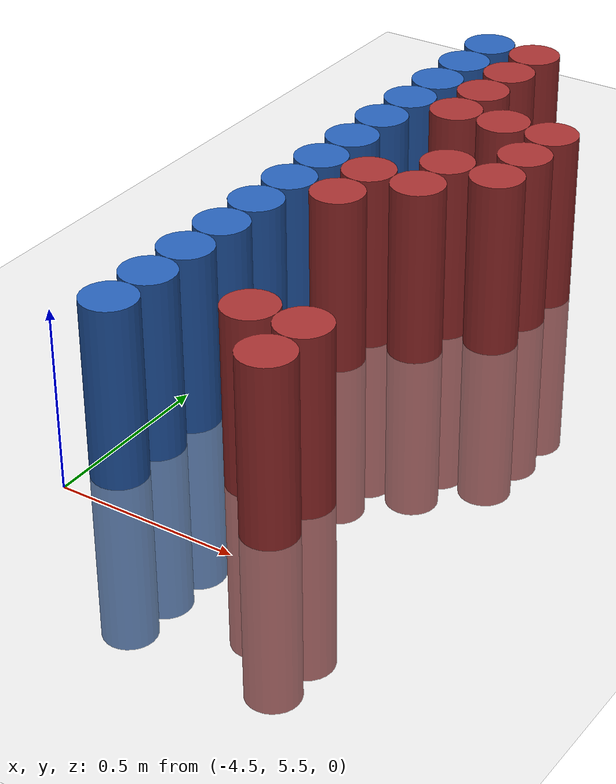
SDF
<sdf version="1.6">
 <world name="default">
  <model name="ground_plane">
   <static>1</static>
   <link name="link">
    <collision name="collision">
     <geometry><plane><normal>0 0 1</normal><size>100 100</size></plane></geometry>
     <surface><friction><ode><mu>100</mu><mu2>50</mu2></ode></friction></surface>
    </collision>
    <visual name="visual">
     <cast_shadows>0</cast_shadows>
     <geometry><plane><normal>0 0 1</normal><size>100 100</size></plane></geometry>
     <material>
      <script><uri>file://media/materials/scripts/gazebo.material</uri><name>Gazebo/Grey</name></script>
     </material>
    </visual>
   </link>
  </model>
  <model name="unit_cylinder_99">
   <static>1</static>
   <pose>-4.425000 5.625000 0.000000 0.000000 0.000000 0.000000</pose>
   <link name="link">
    <inertial>
     <mass>1</mass>
     <inertia><ixx>0.145833</ixx><ixy>0</ixy><ixz>0</ixz><iyy>0.145833</iyy><iyz>0</iyz><izz>0.125</izz></inertia>
    </inertial>
    <collision name="collision">
     <geometry><cylinder><radius>0.075000</radius><length>1</length></cylinder></geometry>
    </collision>
    <visual name="visual">
     <geometry><cylinder><radius>0.075000</radius><length>1</length></cylinder></geometry>
     <material>
      <ambient>0.152000 0.379000 0.720000 1</ambient>
      <diffuse>0.152000 0.379000 0.720000 1</diffuse>
     </material>
     <material>
      <script><name>Gazebo/Grey</name><uri>file://media/materials/scripts/gazebo.material</uri></script>
     </material>
    </visual>
   </link>
  </model>
  <model name="unit_cylinder_100">
   <static>1</static>
   <pose>-4.425000 5.775000 0.000000 0.000000 0.000000 0.000000</pose>
   <link name="link">
    <inertial>
     <mass>1</mass>
     <inertia><ixx>0.145833</ixx><ixy>0</ixy><ixz>0</ixz><iyy>0.145833</iyy><iyz>0</iyz><izz>0.125</izz></inertia>
    </inertial>
    <collision name="collision">
     <geometry><cylinder><radius>0.075000</radius><length>1</length></cylinder></geometry>
    </collision>
    <visual name="visual">
     <geometry><cylinder><radius>0.075000</radius><length>1</length></cylinder></geometry>
     <material>
      <ambient>0.152000 0.379000 0.720000 1</ambient>
      <diffuse>0.152000 0.379000 0.720000 1</diffuse>
     </material>
     <material>
      <script><name>Gazebo/Grey</name><uri>file://media/materials/scripts/gazebo.material</uri></script>
     </material>
    </visual>
   </link>
  </model>
  <model name="unit_cylinder_101">
   <static>1</static>
   <pose>-4.425000 5.925000 0.000000 0.000000 0.000000 0.000000</pose>
   <link name="link">
    <inertial>
     <mass>1</mass>
     <inertia><ixx>0.145833</ixx><ixy>0</ixy><ixz>0</ixz><iyy>0.145833</iyy><iyz>0</iyz><izz>0.125</izz></inertia>
    </inertial>
    <collision name="collision">
     <geometry><cylinder><radius>0.075000</radius><length>1</length></cylinder></geometry>
    </collision>
    <visual name="visual">
     <geometry><cylinder><radius>0.075000</radius><length>1</length></cylinder></geometry>
     <material>
      <ambient>0.152000 0.379000 0.720000 1</ambient>
      <diffuse>0.152000 0.379000 0.720000 1</diffuse>
     </material>
     <material>
      <script><name>Gazebo/Grey</name><uri>file://media/materials/scripts/gazebo.material</uri></script>
     </material>
    </visual>
   </link>
  </model>
  <model name="unit_cylinder_102">
   <static>1</static>
   <pose>-4.425000 6.075000 0.000000 0.000000 0.000000 0.000000</pose>
   <link name="link">
    <inertial>
     <mass>1</mass>
     <inertia><ixx>0.145833</ixx><ixy>0</ixy><ixz>0</ixz><iyy>0.145833</iyy><iyz>0</iyz><izz>0.125</izz></inertia>
    </inertial>
    <collision name="collision">
     <geometry><cylinder><radius>0.075000</radius><length>1</length></cylinder></geometry>
    </collision>
    <visual name="visual">
     <geometry><cylinder><radius>0.075000</radius><length>1</length></cylinder></geometry>
     <material>
      <ambient>0.152000 0.379000 0.720000 1</ambient>
      <diffuse>0.152000 0.379000 0.720000 1</diffuse>
     </material>
     <material>
      <script><name>Gazebo/Grey</name><uri>file://media/materials/scripts/gazebo.material</uri></script>
     </material>
    </visual>
   </link>
  </model>
  <model name="unit_cylinder_103">
   <static>1</static>
   <pose>-4.425000 6.225000 0.000000 0.000000 0.000000 0.000000</pose>
   <link name="link">
    <inertial>
     <mass>1</mass>
     <inertia><ixx>0.145833</ixx><ixy>0</ixy><ixz>0</ixz><iyy>0.145833</iyy><iyz>0</iyz><izz>0.125</izz></inertia>
    </inertial>
    <collision name="collision">
     <geometry><cylinder><radius>0.075000</radius><length>1</length></cylinder></geometry>
    </collision>
    <visual name="visual">
     <geometry><cylinder><radius>0.075000</radius><length>1</length></cylinder></geometry>
     <material>
      <ambient>0.152000 0.379000 0.720000 1</ambient>
      <diffuse>0.152000 0.379000 0.720000 1</diffuse>
     </material>
     <material>
      <script><name>Gazebo/Grey</name><uri>file://media/materials/scripts/gazebo.material</uri></script>
     </material>
    </visual>
   </link>
  </model>
  <model name="unit_cylinder_104">
   <static>1</static>
   <pose>-4.425000 6.375000 0.000000 0.000000 0.000000 0.000000</pose>
   <link name="link">
    <inertial>
     <mass>1</mass>
     <inertia><ixx>0.145833</ixx><ixy>0</ixy><ixz>0</ixz><iyy>0.145833</iyy><iyz>0</iyz><izz>0.125</izz></inertia>
    </inertial>
    <collision name="collision">
     <geometry><cylinder><radius>0.075000</radius><length>1</length></cylinder></geometry>
    </collision>
    <visual name="visual">
     <geometry><cylinder><radius>0.075000</radius><length>1</length></cylinder></geometry>
     <material>
      <ambient>0.152000 0.379000 0.720000 1</ambient>
      <diffuse>0.152000 0.379000 0.720000 1</diffuse>
     </material>
     <material>
      <script><name>Gazebo/Grey</name><uri>file://media/materials/scripts/gazebo.material</uri></script>
     </material>
    </visual>
   </link>
  </model>
  <model name="unit_cylinder_105">
   <static>1</static>
   <pose>-4.425000 6.525000 0.000000 0.000000 0.000000 0.000000</pose>
   <link name="link">
    <inertial>
     <mass>1</mass>
     <inertia><ixx>0.145833</ixx><ixy>0</ixy><ixz>0</ixz><iyy>0.145833</iyy><iyz>0</iyz><izz>0.125</izz></inertia>
    </inertial>
    <collision name="collision">
     <geometry><cylinder><radius>0.075000</radius><length>1</length></cylinder></geometry>
    </collision>
    <visual name="visual">
     <geometry><cylinder><radius>0.075000</radius><length>1</length></cylinder></geometry>
     <material>
      <ambient>0.152000 0.379000 0.720000 1</ambient>
      <diffuse>0.152000 0.379000 0.720000 1</diffuse>
     </material>
     <material>
      <script><name>Gazebo/Grey</name><uri>file://media/materials/scripts/gazebo.material</uri></script>
     </material>
    </visual>
   </link>
  </model>
  <model name="unit_cylinder_106">
   <static>1</static>
   <pose>-4.425000 6.675000 0.000000 0.000000 0.000000 0.000000</pose>
   <link name="link">
    <inertial>
     <mass>1</mass>
     <inertia><ixx>0.145833</ixx><ixy>0</ixy><ixz>0</ixz><iyy>0.145833</iyy><iyz>0</iyz><izz>0.125</izz></inertia>
    </inertial>
    <collision name="collision">
     <geometry><cylinder><radius>0.075000</radius><length>1</length></cylinder></geometry>
    </collision>
    <visual name="visual">
     <geometry><cylinder><radius>0.075000</radius><length>1</length></cylinder></geometry>
     <material>
      <ambient>0.152000 0.379000 0.720000 1</ambient>
      <diffuse>0.152000 0.379000 0.720000 1</diffuse>
     </material>
     <material>
      <script><name>Gazebo/Grey</name><uri>file://media/materials/scripts/gazebo.material</uri></script>
     </material>
    </visual>
   </link>
  </model>
  <model name="unit_cylinder_107">
   <static>1</static>
   <pose>-4.425000 6.825000 0.000000 0.000000 0.000000 0.000000</pose>
   <link name="link">
    <inertial>
     <mass>1</mass>
     <inertia><ixx>0.145833</ixx><ixy>0</ixy><ixz>0</ixz><iyy>0.145833</iyy><iyz>0</iyz><izz>0.125</izz></inertia>
    </inertial>
    <collision name="collision">
     <geometry><cylinder><radius>0.075000</radius><length>1</length></cylinder></geometry>
    </collision>
    <visual name="visual">
     <geometry><cylinder><radius>0.075000</radius><length>1</length></cylinder></geometry>
     <material>
      <ambient>0.152000 0.379000 0.720000 1</ambient>
      <diffuse>0.152000 0.379000 0.720000 1</diffuse>
     </material>
     <material>
      <script><name>Gazebo/Grey</name><uri>file://media/materials/scripts/gazebo.material</uri></script>
     </material>
    </visual>
   </link>
  </model>
  <model name="unit_cylinder_108">
   <static>1</static>
   <pose>-4.425000 6.975000 0.000000 0.000000 0.000000 0.000000</pose>
   <link name="link">
    <inertial>
     <mass>1</mass>
     <inertia><ixx>0.145833</ixx><ixy>0</ixy><ixz>0</ixz><iyy>0.145833</iyy><iyz>0</iyz><izz>0.125</izz></inertia>
    </inertial>
    <collision name="collision">
     <geometry><cylinder><radius>0.075000</radius><length>1</length></cylinder></geometry>
    </collision>
    <visual name="visual">
     <geometry><cylinder><radius>0.075000</radius><length>1</length></cylinder></geometry>
     <material>
      <ambient>0.152000 0.379000 0.720000 1</ambient>
      <diffuse>0.152000 0.379000 0.720000 1</diffuse>
     </material>
     <material>
      <script><name>Gazebo/Grey</name><uri>file://media/materials/scripts/gazebo.material</uri></script>
     </material>
    </visual>
   </link>
  </model>
  <model name="unit_cylinder_109">
   <static>1</static>
   <pose>-4.425000 7.125000 0.000000 0.000000 0.000000 0.000000</pose>
   <link name="link">
    <inertial>
     <mass>1</mass>
     <inertia><ixx>0.145833</ixx><ixy>0</ixy><ixz>0</ixz><iyy>0.145833</iyy><iyz>0</iyz><izz>0.125</izz></inertia>
    </inertial>
    <collision name="collision">
     <geometry><cylinder><radius>0.075000</radius><length>1</length></cylinder></geometry>
    </collision>
    <visual name="visual">
     <geometry><cylinder><radius>0.075000</radius><length>1</length></cylinder></geometry>
     <material>
      <ambient>0.152000 0.379000 0.720000 1</ambient>
      <diffuse>0.152000 0.379000 0.720000 1</diffuse>
     </material>
     <material>
      <script><name>Gazebo/Grey</name><uri>file://media/materials/scripts/gazebo.material</uri></script>
     </material>
    </visual>
   </link>
  </model>
  <model name="unit_cylinder_110">
   <static>1</static>
   <pose>-4.425000 7.275000 0.000000 0.000000 0.000000 0.000000</pose>
   <link name="link">
    <inertial>
     <mass>1</mass>
     <inertia><ixx>0.145833</ixx><ixy>0</ixy><ixz>0</ixz><iyy>0.145833</iyy><iyz>0</iyz><izz>0.125</izz></inertia>
    </inertial>
    <collision name="collision">
     <geometry><cylinder><radius>0.075000</radius><length>1</length></cylinder></geometry>
    </collision>
    <visual name="visual">
     <geometry><cylinder><radius>0.075000</radius><length>1</length></cylinder></geometry>
     <material>
      <ambient>0.152000 0.379000 0.720000 1</ambient>
      <diffuse>0.152000 0.379000 0.720000 1</diffuse>
     </material>
     <material>
      <script><name>Gazebo/Grey</name><uri>file://media/materials/scripts/gazebo.material</uri></script>
     </material>
    </visual>
   </link>
  </model>
  <model name="unit_cylinder_111">
   <static>1</static>
   <pose>-4.425000 7.425000 0.000000 0.000000 0.000000 0.000000</pose>
   <link name="link">
    <inertial>
     <mass>1</mass>
     <inertia><ixx>0.145833</ixx><ixy>0</ixy><ixz>0</ixz><iyy>0.145833</iyy><iyz>0</iyz><izz>0.125</izz></inertia>
    </inertial>
    <collision name="collision">
     <geometry><cylinder><radius>0.075000</radius><length>1</length></cylinder></geometry>
    </collision>
    <visual name="visual">
     <geometry><cylinder><radius>0.075000</radius><length>1</length></cylinder></geometry>
     <material>
      <ambient>0.152000 0.379000 0.720000 1</ambient>
      <diffuse>0.152000 0.379000 0.720000 1</diffuse>
     </material>
     <material>
      <script><name>Gazebo/Grey</name><uri>file://media/materials/scripts/gazebo.material</uri></script>
     </material>
    </visual>
   </link>
  </model>
  <model name="unit_cylinder_129">
   <static>1</static>
   <pose>-4.275000 6.375000 0.000000 0.000000 0.000000 0.000000</pose>
   <link name="link">
    <inertial>
     <mass>1</mass>
     <inertia><ixx>0.145833</ixx><ixy>0</ixy><ixz>0</ixz><iyy>0.145833</iyy><iyz>0</iyz><izz>0.125</izz></inertia>
    </inertial>
    <collision name="collision">
     <geometry><cylinder><radius>0.075000</radius><length>1</length></cylinder></geometry>
    </collision>
    <visual name="visual">
     <geometry><cylinder><radius>0.075000</radius><length>1</length></cylinder></geometry>
     <material>
      <ambient>0.648000 0.192000 0.192000 1</ambient>
      <diffuse>0.648000 0.192000 0.192000 1</diffuse>
     </material>
     <material>
      <script><name>Gazebo/Grey</name><uri>file://media/materials/scripts/gazebo.material</uri></script>
     </material>
    </visual>
   </link>
  </model>
  <model name="unit_cylinder_130">
   <static>1</static>
   <pose>-4.275000 6.525000 0.000000 0.000000 0.000000 0.000000</pose>
   <link name="link">
    <inertial>
     <mass>1</mass>
     <inertia><ixx>0.145833</ixx><ixy>0</ixy><ixz>0</ixz><iyy>0.145833</iyy><iyz>0</iyz><izz>0.125</izz></inertia>
    </inertial>
    <collision name="collision">
     <geometry><cylinder><radius>0.075000</radius><length>1</length></cylinder></geometry>
    </collision>
    <visual name="visual">
     <geometry><cylinder><radius>0.075000</radius><length>1</length></cylinder></geometry>
     <material>
      <ambient>0.648000 0.192000 0.192000 1</ambient>
      <diffuse>0.648000 0.192000 0.192000 1</diffuse>
     </material>
     <material>
      <script><name>Gazebo/Grey</name><uri>file://media/materials/scripts/gazebo.material</uri></script>
     </material>
    </visual>
   </link>
  </model>
  <model name="unit_cylinder_131">
   <static>1</static>
   <pose>-4.275000 6.975000 0.000000 0.000000 0.000000 0.000000</pose>
   <link name="link">
    <inertial>
     <mass>1</mass>
     <inertia><ixx>0.145833</ixx><ixy>0</ixy><ixz>0</ixz><iyy>0.145833</iyy><iyz>0</iyz><izz>0.125</izz></inertia>
    </inertial>
    <collision name="collision">
     <geometry><cylinder><radius>0.075000</radius><length>1</length></cylinder></geometry>
    </collision>
    <visual name="visual">
     <geometry><cylinder><radius>0.075000</radius><length>1</length></cylinder></geometry>
     <material>
      <ambient>0.648000 0.192000 0.192000 1</ambient>
      <diffuse>0.648000 0.192000 0.192000 1</diffuse>
     </material>
     <material>
      <script><name>Gazebo/Grey</name><uri>file://media/materials/scripts/gazebo.material</uri></script>
     </material>
    </visual>
   </link>
  </model>
  <model name="unit_cylinder_132">
   <static>1</static>
   <pose>-4.275000 7.125000 0.000000 0.000000 0.000000 0.000000</pose>
   <link name="link">
    <inertial>
     <mass>1</mass>
     <inertia><ixx>0.145833</ixx><ixy>0</ixy><ixz>0</ixz><iyy>0.145833</iyy><iyz>0</iyz><izz>0.125</izz></inertia>
    </inertial>
    <collision name="collision">
     <geometry><cylinder><radius>0.075000</radius><length>1</length></cylinder></geometry>
    </collision>
    <visual name="visual">
     <geometry><cylinder><radius>0.075000</radius><length>1</length></cylinder></geometry>
     <material>
      <ambient>0.648000 0.192000 0.192000 1</ambient>
      <diffuse>0.648000 0.192000 0.192000 1</diffuse>
     </material>
     <material>
      <script><name>Gazebo/Grey</name><uri>file://media/materials/scripts/gazebo.material</uri></script>
     </material>
    </visual>
   </link>
  </model>
  <model name="unit_cylinder_133">
   <static>1</static>
   <pose>-4.275000 7.275000 0.000000 0.000000 0.000000 0.000000</pose>
   <link name="link">
    <inertial>
     <mass>1</mass>
     <inertia><ixx>0.145833</ixx><ixy>0</ixy><ixz>0</ixz><iyy>0.145833</iyy><iyz>0</iyz><izz>0.125</izz></inertia>
    </inertial>
    <collision name="collision">
     <geometry><cylinder><radius>0.075000</radius><length>1</length></cylinder></geometry>
    </collision>
    <visual name="visual">
     <geometry><cylinder><radius>0.075000</radius><length>1</length></cylinder></geometry>
     <material>
      <ambient>0.648000 0.192000 0.192000 1</ambient>
      <diffuse>0.648000 0.192000 0.192000 1</diffuse>
     </material>
     <material>
      <script><name>Gazebo/Grey</name><uri>file://media/materials/scripts/gazebo.material</uri></script>
     </material>
    </visual>
   </link>
  </model>
  <model name="unit_cylinder_134">
   <static>1</static>
   <pose>-4.275000 7.425000 0.000000 0.000000 0.000000 0.000000</pose>
   <link name="link">
    <inertial>
     <mass>1</mass>
     <inertia><ixx>0.145833</ixx><ixy>0</ixy><ixz>0</ixz><iyy>0.145833</iyy><iyz>0</iyz><izz>0.125</izz></inertia>
    </inertial>
    <collision name="collision">
     <geometry><cylinder><radius>0.075000</radius><length>1</length></cylinder></geometry>
    </collision>
    <visual name="visual">
     <geometry><cylinder><radius>0.075000</radius><length>1</length></cylinder></geometry>
     <material>
      <ambient>0.648000 0.192000 0.192000 1</ambient>
      <diffuse>0.648000 0.192000 0.192000 1</diffuse>
     </material>
     <material>
      <script><name>Gazebo/Grey</name><uri>file://media/materials/scripts/gazebo.material</uri></script>
     </material>
    </visual>
   </link>
  </model>
  <model name="unit_cylinder_147">
   <static>1</static>
   <pose>-4.125000 5.775000 0.000000 0.000000 0.000000 0.000000</pose>
   <link name="link">
    <inertial>
     <mass>1</mass>
     <inertia><ixx>0.145833</ixx><ixy>0</ixy><ixz>0</ixz><iyy>0.145833</iyy><iyz>0</iyz><izz>0.125</izz></inertia>
    </inertial>
    <collision name="collision">
     <geometry><cylinder><radius>0.075000</radius><length>1</length></cylinder></geometry>
    </collision>
    <visual name="visual">
     <geometry><cylinder><radius>0.075000</radius><length>1</length></cylinder></geometry>
     <material>
      <ambient>0.648000 0.192000 0.192000 1</ambient>
      <diffuse>0.648000 0.192000 0.192000 1</diffuse>
     </material>
     <material>
      <script><name>Gazebo/Grey</name><uri>file://media/materials/scripts/gazebo.material</uri></script>
     </material>
    </visual>
   </link>
  </model>
  <model name="unit_cylinder_148">
   <static>1</static>
   <pose>-4.125000 6.525000 0.000000 0.000000 0.000000 0.000000</pose>
   <link name="link">
    <inertial>
     <mass>1</mass>
     <inertia><ixx>0.145833</ixx><ixy>0</ixy><ixz>0</ixz><iyy>0.145833</iyy><iyz>0</iyz><izz>0.125</izz></inertia>
    </inertial>
    <collision name="collision">
     <geometry><cylinder><radius>0.075000</radius><length>1</length></cylinder></geometry>
    </collision>
    <visual name="visual">
     <geometry><cylinder><radius>0.075000</radius><length>1</length></cylinder></geometry>
     <material>
      <ambient>0.648000 0.192000 0.192000 1</ambient>
      <diffuse>0.648000 0.192000 0.192000 1</diffuse>
     </material>
     <material>
      <script><name>Gazebo/Grey</name><uri>file://media/materials/scripts/gazebo.material</uri></script>
     </material>
    </visual>
   </link>
  </model>
  <model name="unit_cylinder_149">
   <static>1</static>
   <pose>-4.125000 6.675000 0.000000 0.000000 0.000000 0.000000</pose>
   <link name="link">
    <inertial>
     <mass>1</mass>
     <inertia><ixx>0.145833</ixx><ixy>0</ixy><ixz>0</ixz><iyy>0.145833</iyy><iyz>0</iyz><izz>0.125</izz></inertia>
    </inertial>
    <collision name="collision">
     <geometry><cylinder><radius>0.075000</radius><length>1</length></cylinder></geometry>
    </collision>
    <visual name="visual">
     <geometry><cylinder><radius>0.075000</radius><length>1</length></cylinder></geometry>
     <material>
      <ambient>0.648000 0.192000 0.192000 1</ambient>
      <diffuse>0.648000 0.192000 0.192000 1</diffuse>
     </material>
     <material>
      <script><name>Gazebo/Grey</name><uri>file://media/materials/scripts/gazebo.material</uri></script>
     </material>
    </visual>
   </link>
  </model>
  <model name="unit_cylinder_150">
   <static>1</static>
   <pose>-4.125000 6.975000 0.000000 0.000000 0.000000 0.000000</pose>
   <link name="link">
    <inertial>
     <mass>1</mass>
     <inertia><ixx>0.145833</ixx><ixy>0</ixy><ixz>0</ixz><iyy>0.145833</iyy><iyz>0</iyz><izz>0.125</izz></inertia>
    </inertial>
    <collision name="collision">
     <geometry><cylinder><radius>0.075000</radius><length>1</length></cylinder></geometry>
    </collision>
    <visual name="visual">
     <geometry><cylinder><radius>0.075000</radius><length>1</length></cylinder></geometry>
     <material>
      <ambient>0.648000 0.192000 0.192000 1</ambient>
      <diffuse>0.648000 0.192000 0.192000 1</diffuse>
     </material>
     <material>
      <script><name>Gazebo/Grey</name><uri>file://media/materials/scripts/gazebo.material</uri></script>
     </material>
    </visual>
   </link>
  </model>
  <model name="unit_cylinder_155">
   <static>1</static>
   <pose>-3.975000 5.625000 0.000000 0.000000 0.000000 0.000000</pose>
   <link name="link">
    <inertial>
     <mass>1</mass>
     <inertia><ixx>0.145833</ixx><ixy>0</ixy><ixz>0</ixz><iyy>0.145833</iyy><iyz>0</iyz><izz>0.125</izz></inertia>
    </inertial>
    <collision name="collision">
     <geometry><cylinder><radius>0.075000</radius><length>1</length></cylinder></geometry>
    </collision>
    <visual name="visual">
     <geometry><cylinder><radius>0.075000</radius><length>1</length></cylinder></geometry>
     <material>
      <ambient>0.648000 0.192000 0.192000 1</ambient>
      <diffuse>0.648000 0.192000 0.192000 1</diffuse>
     </material>
     <material>
      <script><name>Gazebo/Grey</name><uri>file://media/materials/scripts/gazebo.material</uri></script>
     </material>
    </visual>
   </link>
  </model>
  <model name="unit_cylinder_156">
   <static>1</static>
   <pose>-3.975000 5.775000 0.000000 0.000000 0.000000 0.000000</pose>
   <link name="link">
    <inertial>
     <mass>1</mass>
     <inertia><ixx>0.145833</ixx><ixy>0</ixy><ixz>0</ixz><iyy>0.145833</iyy><iyz>0</iyz><izz>0.125</izz></inertia>
    </inertial>
    <collision name="collision">
     <geometry><cylinder><radius>0.075000</radius><length>1</length></cylinder></geometry>
    </collision>
    <visual name="visual">
     <geometry><cylinder><radius>0.075000</radius><length>1</length></cylinder></geometry>
     <material>
      <ambient>0.648000 0.192000 0.192000 1</ambient>
      <diffuse>0.648000 0.192000 0.192000 1</diffuse>
     </material>
     <material>
      <script><name>Gazebo/Grey</name><uri>file://media/materials/scripts/gazebo.material</uri></script>
     </material>
    </visual>
   </link>
  </model>
  <model name="unit_cylinder_157">
   <static>1</static>
   <pose>-3.975000 6.675000 0.000000 0.000000 0.000000 0.000000</pose>
   <link name="link">
    <inertial>
     <mass>1</mass>
     <inertia><ixx>0.145833</ixx><ixy>0</ixy><ixz>0</ixz><iyy>0.145833</iyy><iyz>0</iyz><izz>0.125</izz></inertia>
    </inertial>
    <collision name="collision">
     <geometry><cylinder><radius>0.075000</radius><length>1</length></cylinder></geometry>
    </collision>
    <visual name="visual">
     <geometry><cylinder><radius>0.075000</radius><length>1</length></cylinder></geometry>
     <material>
      <ambient>0.648000 0.192000 0.192000 1</ambient>
      <diffuse>0.648000 0.192000 0.192000 1</diffuse>
     </material>
     <material>
      <script><name>Gazebo/Grey</name><uri>file://media/materials/scripts/gazebo.material</uri></script>
     </material>
    </visual>
   </link>
  </model>
  <model name="unit_cylinder_158">
   <static>1</static>
   <pose>-3.975000 6.825000 0.000000 0.000000 0.000000 0.000000</pose>
   <link name="link">
    <inertial>
     <mass>1</mass>
     <inertia><ixx>0.145833</ixx><ixy>0</ixy><ixz>0</ixz><iyy>0.145833</iyy><iyz>0</iyz><izz>0.125</izz></inertia>
    </inertial>
    <collision name="collision">
     <geometry><cylinder><radius>0.075000</radius><length>1</length></cylinder></geometry>
    </collision>
    <visual name="visual">
     <geometry><cylinder><radius>0.075000</radius><length>1</length></cylinder></geometry>
     <material>
      <ambient>0.648000 0.192000 0.192000 1</ambient>
      <diffuse>0.648000 0.192000 0.192000 1</diffuse>
     </material>
     <material>
      <script><name>Gazebo/Grey</name><uri>file://media/materials/scripts/gazebo.material</uri></script>
     </material>
    </visual>
   </link>
  </model>
  <model name="unit_cylinder_159">
   <static>1</static>
   <pose>-3.975000 6.975000 0.000000 0.000000 0.000000 0.000000</pose>
   <link name="link">
    <inertial>
     <mass>1</mass>
     <inertia><ixx>0.145833</ixx><ixy>0</ixy><ixz>0</ixz><iyy>0.145833</iyy><iyz>0</iyz><izz>0.125</izz></inertia>
    </inertial>
    <collision name="collision">
     <geometry><cylinder><radius>0.075000</radius><length>1</length></cylinder></geometry>
    </collision>
    <visual name="visual">
     <geometry><cylinder><radius>0.075000</radius><length>1</length></cylinder></geometry>
     <material>
      <ambient>0.648000 0.192000 0.192000 1</ambient>
      <diffuse>0.648000 0.192000 0.192000 1</diffuse>
     </material>
     <material>
      <script><name>Gazebo/Grey</name><uri>file://media/materials/scripts/gazebo.material</uri></script>
     </material>
    </visual>
   </link>
  </model>
 </world>
</sdf>
